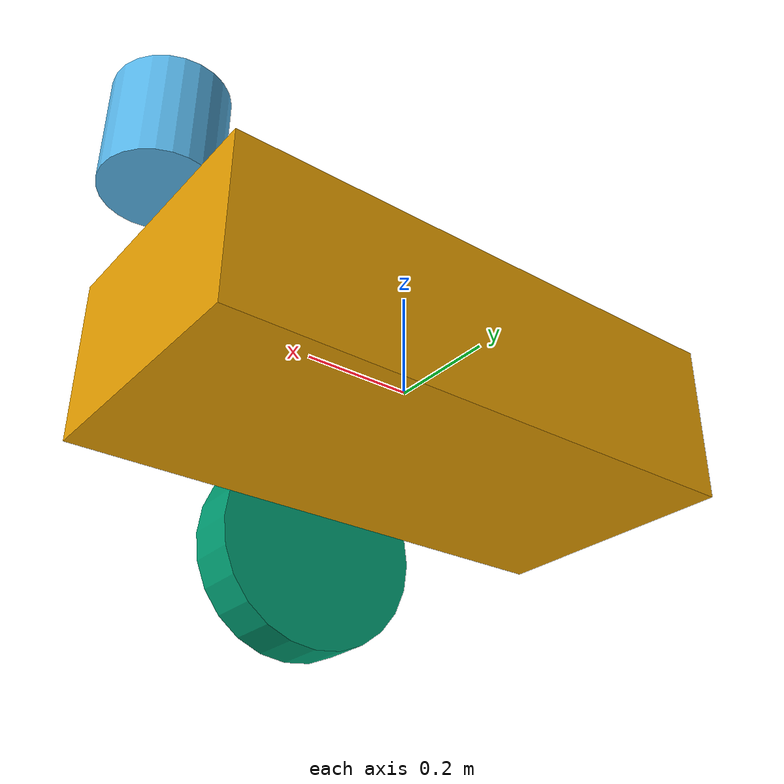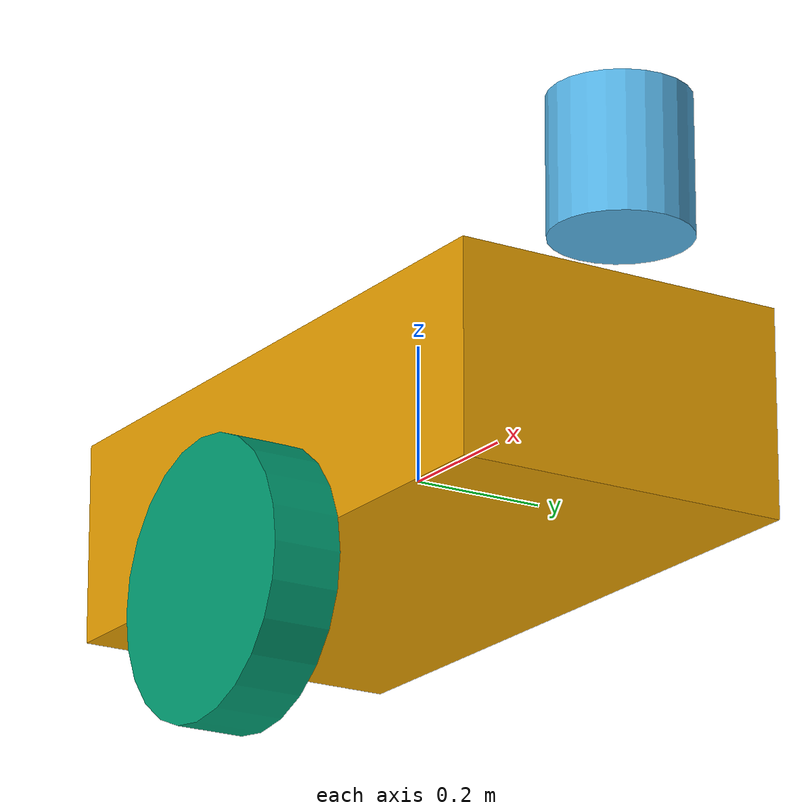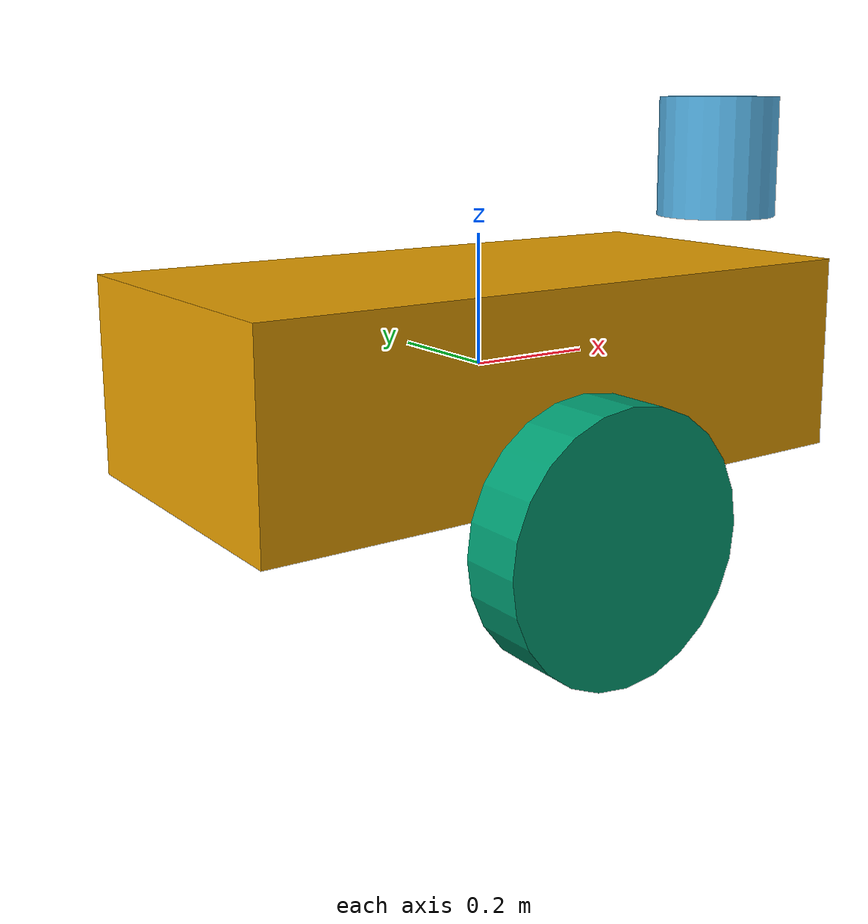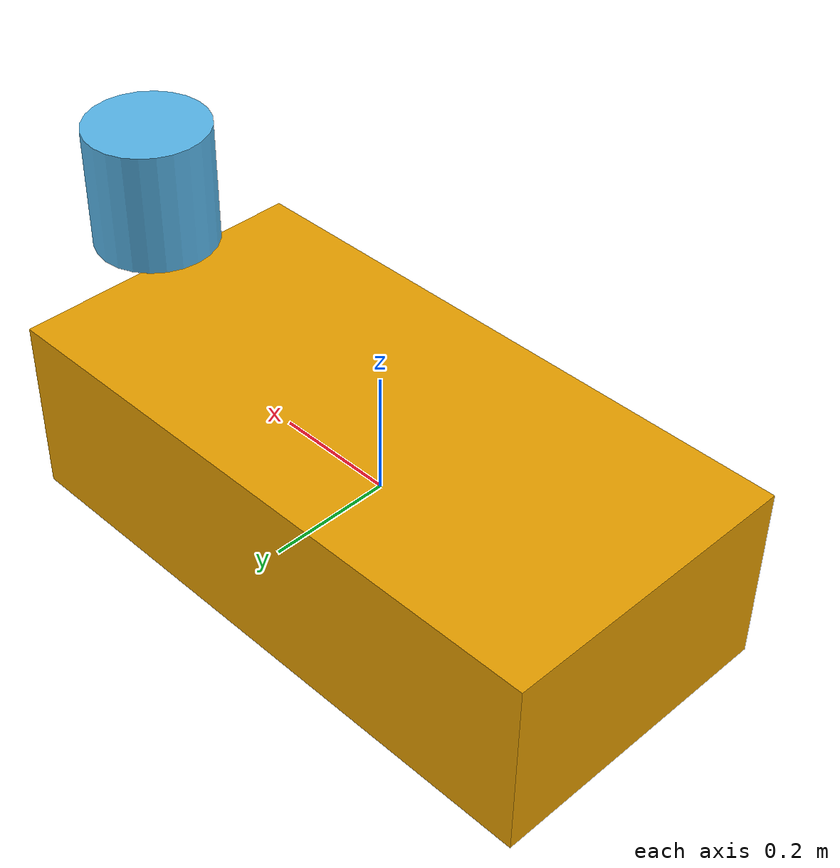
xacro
<?xml version="1.0"?>

<robot name="my_robot" xmlns:xacro="http://www.ros.org/wiki/xacro">

<xacro:property name="body_length" value="1.0"/>
<xacro:property name="body_width" value="0.5"/>
<xacro:property name="body_height" value="0.3"/>

<!---=======Base link===========-->
<link name="base_link">
	<visual>
		<geometry>
			<box size="${body_length} ${body_width} ${body_height}"/>
		</geometry>
	</visual>
</link>

<!---=======Laser link===========-->

<link name="laser_link">
	<visual>
		<geometry>
			<cylinder radius="0.1" length="0.2"/>
		</geometry>
	</visual>
</link>

<joint name="laser_joint" type="fixed">
	<parent link="base_link"  />
	<child link="laser_link" />
	<origin xyz="0.5 0 0.3" rpy="0 0 0" />

</joint>

<link name="wheel_link">
	<visual>
		<geometry>
			<cylinder radius="0.2" length="0.1" />
		</geometry>
	</visual>
</link>

<joint name="wheel_joint" type="continuous">
	<parent link="base_link"/>
	<child link="wheel_link"/>
	<origin xyz="0 -0.3 -0.2" rpy="1.5708 0 0 "/>
	<axis xyz="0 0 1"/>
</joint>

</robot>
